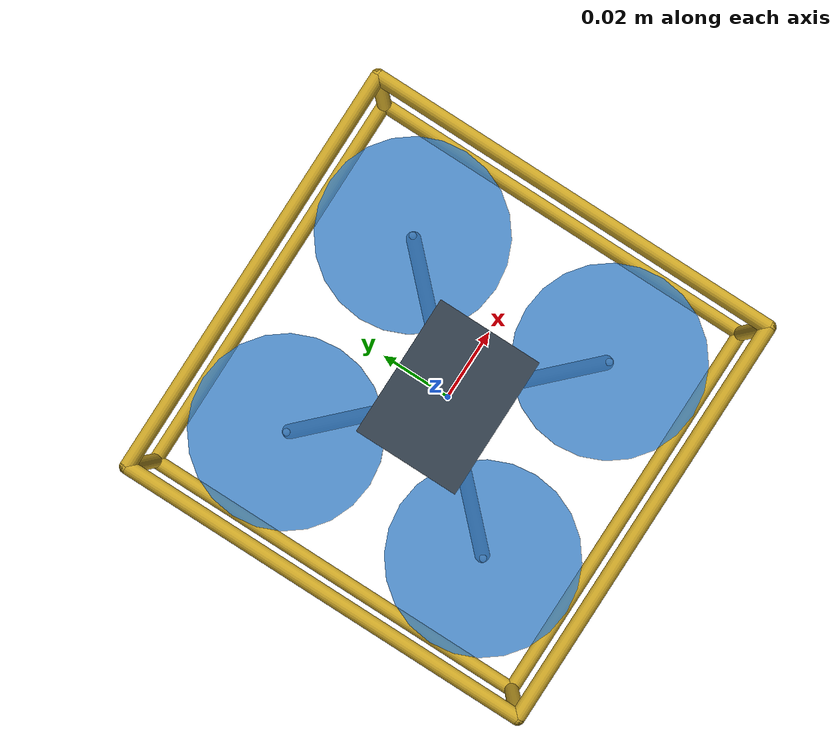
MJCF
<mujoco model="rm27_drone_dynamic">
  <compiler angle="radian" />
  <option timestep=".002" integrator="RK4" gravity="0 0 -9.81" />
  <worldbody>
    <body name="rm27_drone" pos="0 0 0" quat="1 0 0 0">
      <freejoint name="rm27_drone_free" />
      <inertial pos="0 0 0" mass="0.18" diaginertia="4.483333333333333e-05 5.346666666666667e-05 8.843333333333333e-05" />
      <geom name="rm27_drone_fuselage" type="box" size=".02 .015 .01" rgba=".2 .25 .3 1" />
      <geom name="rm27_drone_guard_0" type="capsule" size="0.002" fromto="-0.057999999999999996 -0.057999999999999996 -0.018 0.057999999999999996 -0.057999999999999996 -0.018" rgba=".8 .65 .15 1" />
      <geom name="rm27_drone_guard_1" type="capsule" size="0.002" fromto="-0.057999999999999996 0.057999999999999996 -0.018 0.057999999999999996 0.057999999999999996 -0.018" rgba=".8 .65 .15 1" />
      <geom name="rm27_drone_guard_2" type="capsule" size="0.002" fromto="-0.057999999999999996 -0.057999999999999996 -0.018 -0.057999999999999996 0.057999999999999996 -0.018" rgba=".8 .65 .15 1" />
      <geom name="rm27_drone_guard_3" type="capsule" size="0.002" fromto="0.057999999999999996 -0.057999999999999996 -0.018 0.057999999999999996 0.057999999999999996 -0.018" rgba=".8 .65 .15 1" />
      <geom name="rm27_drone_guard_4" type="capsule" size="0.002" fromto="-0.057999999999999996 -0.057999999999999996 0.018 0.057999999999999996 -0.057999999999999996 0.018" rgba=".8 .65 .15 1" />
      <geom name="rm27_drone_guard_5" type="capsule" size="0.002" fromto="-0.057999999999999996 0.057999999999999996 0.018 0.057999999999999996 0.057999999999999996 0.018" rgba=".8 .65 .15 1" />
      <geom name="rm27_drone_guard_6" type="capsule" size="0.002" fromto="-0.057999999999999996 -0.057999999999999996 0.018 -0.057999999999999996 0.057999999999999996 0.018" rgba=".8 .65 .15 1" />
      <geom name="rm27_drone_guard_7" type="capsule" size="0.002" fromto="0.057999999999999996 -0.057999999999999996 0.018 0.057999999999999996 0.057999999999999996 0.018" rgba=".8 .65 .15 1" />
      <geom name="rm27_drone_guard_8" type="capsule" size="0.002" fromto="-0.057999999999999996 -0.057999999999999996 -0.018 -0.057999999999999996 -0.057999999999999996 0.018" rgba=".8 .65 .15 1" />
      <geom name="rm27_drone_guard_9" type="capsule" size="0.002" fromto="-0.057999999999999996 0.057999999999999996 -0.018 -0.057999999999999996 0.057999999999999996 0.018" rgba=".8 .65 .15 1" />
      <geom name="rm27_drone_guard_10" type="capsule" size="0.002" fromto="0.057999999999999996 -0.057999999999999996 -0.018 0.057999999999999996 -0.057999999999999996 0.018" rgba=".8 .65 .15 1" />
      <geom name="rm27_drone_guard_11" type="capsule" size="0.002" fromto="0.057999999999999996 0.057999999999999996 -0.018 0.057999999999999996 0.057999999999999996 0.018" rgba=".8 .65 .15 1" />
      <geom name="rm27_drone_arm_0" type="capsule" size=".002" fromto="0 0 0 0.03 0.03 0" rgba=".2 .2 .2 1" />
      <geom name="rm27_drone_prop_0" type="cylinder" size="0.0254 .001" pos="0.03 0.03 .008" contype="0" conaffinity="0" rgba=".2 .5 .8 .8" />
      <site name="rm27_drone_rotor_0" pos="0.03 0.03 .008" size=".001" />
      <geom name="rm27_drone_arm_1" type="capsule" size=".002" fromto="0 0 0 0.03 -0.03 0" rgba=".2 .2 .2 1" />
      <geom name="rm27_drone_prop_1" type="cylinder" size="0.0254 .001" pos="0.03 -0.03 .008" contype="0" conaffinity="0" rgba=".2 .5 .8 .8" />
      <site name="rm27_drone_rotor_1" pos="0.03 -0.03 .008" size=".001" />
      <geom name="rm27_drone_arm_2" type="capsule" size=".002" fromto="0 0 0 -0.03 -0.03 0" rgba=".2 .2 .2 1" />
      <geom name="rm27_drone_prop_2" type="cylinder" size="0.0254 .001" pos="-0.03 -0.03 .008" contype="0" conaffinity="0" rgba=".2 .5 .8 .8" />
      <site name="rm27_drone_rotor_2" pos="-0.03 -0.03 .008" size=".001" />
      <geom name="rm27_drone_arm_3" type="capsule" size=".002" fromto="0 0 0 -0.03 0.03 0" rgba=".2 .2 .2 1" />
      <geom name="rm27_drone_prop_3" type="cylinder" size="0.0254 .001" pos="-0.03 0.03 .008" contype="0" conaffinity="0" rgba=".2 .5 .8 .8" />
      <site name="rm27_drone_rotor_3" pos="-0.03 0.03 .008" size=".001" />
    </body>
  </worldbody>
  <actuator>
    <general name="rm27_drone_motor_0" site="rm27_drone_rotor_0" gear="0 0 1 0 0 0.018" ctrlrange="0 1.103625" dyntype="filterexact" dynprm="0.04" />
    <general name="rm27_drone_motor_1" site="rm27_drone_rotor_1" gear="0 0 1 0 0 -0.018" ctrlrange="0 1.103625" dyntype="filterexact" dynprm="0.04" />
    <general name="rm27_drone_motor_2" site="rm27_drone_rotor_2" gear="0 0 1 0 0 0.018" ctrlrange="0 1.103625" dyntype="filterexact" dynprm="0.04" />
    <general name="rm27_drone_motor_3" site="rm27_drone_rotor_3" gear="0 0 1 0 0 -0.018" ctrlrange="0 1.103625" dyntype="filterexact" dynprm="0.04" />
  </actuator>
</mujoco>
